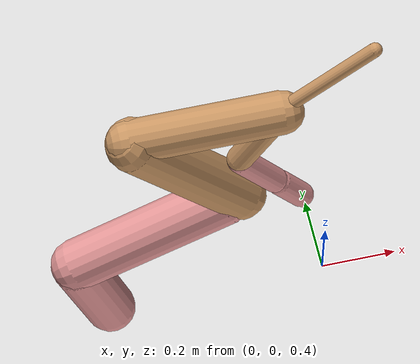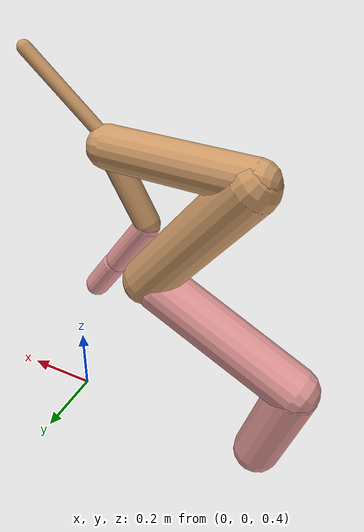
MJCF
<mujoco model="cheetah">
  <compiler angle="radian" coordinate="local" inertiafromgeom="true" settotalmass="14" />
  <default>
    <joint armature=".1" damping=".01" limited="true" solimplimit="0 .8 .03" solreflimit=".02 1" stiffness="8" />
    <geom conaffinity="0" condim="3" contype="1" friction="0.8 .1 .1" rgba="0.8 0.6 .4 1" solimp="0.0 0.8 0.01" solref="0.02 1" />
    <motor ctrllimited="true" ctrlrange="-1 1" />
  </default>
  <size nstack="300000" nuser_geom="1" />
  <option gravity="0 0 -9.81" timestep="0.01" />
  <worldbody>
    <body name="torso" pos="0.0 0.0 1.2408193424937481">
      <joint armature="0" axis="1 0 0" damping="0" limited="false" name="ignorex" pos="0 0 0" stiffness="0" type="slide" />
      <joint armature="0" axis="0 0 1" damping="0" limited="false" name="ignorez" pos="0 0 0" stiffness="0" type="slide" />
      <joint armature="0" axis="0 1 0" damping="0" limited="false" name="ignorey" pos="0 0 0" stiffness="0" type="hinge" />
      <geom fromto="-0.5 0.0 0.0 -0.12855990289738684 0.0 0.0" name="torso" size="0.053569316385548266" type="capsule" />
      <geom axisangle="0 1 0 .87" name="head" pos="-0.028559902897386857 0.0 0.1" size="0.017444000902388627 0.15" type="capsule" />

      <body name="bthigh" pos="-.5 0 0">
        <joint axis="0 1 0" damping="6" name="bthigh" pos="0 0 0" range="-.52 1.05" stiffness="240" type="hinge" />
        <geom axisangle="0 1 0 -3.8" name="bthigh" pos="0.14051931275859625 0.0 -0.18267510658617514" size="0.06724974057407312 0.2114566141199945" type="capsule" />
        <body name="bshin" pos="0.24103862551719252 0.0 -0.35535021317235027">
          <joint axis="0 1 0" damping="4.5" name="bshin" pos="0 0 0" range="-.785 .785" stiffness="180" type="hinge" />
          <geom axisangle="0 1 0 -2.03" name="bshin" pos="-0.20149027864556418 0.0 -0.10074513932278209" rgba="0.9 0.6 0.6 1" size="0.06724974057407312 0.21874822150344259" type="capsule" />
          <body name="bfoot" pos="-0.40298055729112836 0.0 -0.20149027864556418">
            <joint axis="0 1 0" damping="3" name="bfoot" pos="0 0 0" range="-.4 .785" stiffness="120" type="hinge" />
            <geom axisangle="0 1 0 -.27" name="bfoot" pos="0.04272949125431112 0.0 -0.1381586883889393" rgba="0.9 0.6 0.6 1" size="0.06724974057407312 0.13708221880882404" type="capsule" />
            <inertial mass="10" />
          </body>
        </body>
      </body>
      <body name="fthigh" pos="-0.12855990289738684 0.0 0.0">
        <joint axis="0 1 0" damping="4.5" name="fthigh" pos="0 0 0" range="-1.5 0.8" stiffness="180" type="hinge" />
        <geom axisangle="0 1 0 .52" name="fthigh" pos="-0.05332294909955971 0.0 -0.09141076988495948" size="0.03235971308129629 0.09990214349377569" type="capsule" />
        <body name="fshin" pos="-0.10664589819911942 0.0 -0.18282153976991897">
          <joint axis="0 1 0" damping="3" name="fshin" pos="0 0 0" range="-1.2 1.1" stiffness="120" type="hinge" />
          <geom axisangle="0 1 0 -.6" name="fshin" pos="0.049555495280373084 0.0 -0.06861530115743965" rgba="0.9 0.6 0.6 1" size="0.03235971308129629 0.07962125722060318" type="capsule" />
          <body name="ffoot" pos="0.09911099056074617 0.0 -0.1372306023148793">
            <joint axis="0 1 0" damping="1.5" name="ffoot" pos="0 0 0" range="-3.1 -0.3" stiffness="60" type="hinge" />
            <geom axisangle="0 1 0 -.6" name="ffoot" pos="0.03558004359897596 0.0 -0.05534673448729595" rgba="0.9 0.6 0.6 1" size="0.03235971308129629 0.05258007552303984" type="capsule" />
            <inertial mass="10" />
          </body>
        </body>
      </body>
    </body>
  </worldbody>
  <actuator>
    <motor gear="120" joint="bthigh" name="bthigh" />
    <motor gear="90" joint="bshin" name="bshin" />
    <motor gear="60" joint="bfoot" name="bfoot" />
    <motor gear="120" joint="fthigh" name="fthigh" />
    <motor gear="60" joint="fshin" name="fshin" />
    <motor gear="30" joint="ffoot" name="ffoot" />
  </actuator>
</mujoco>
